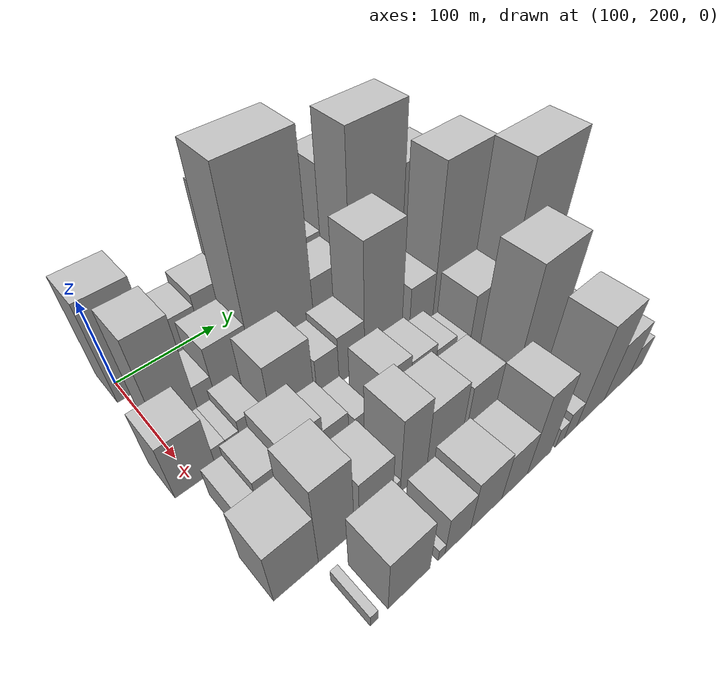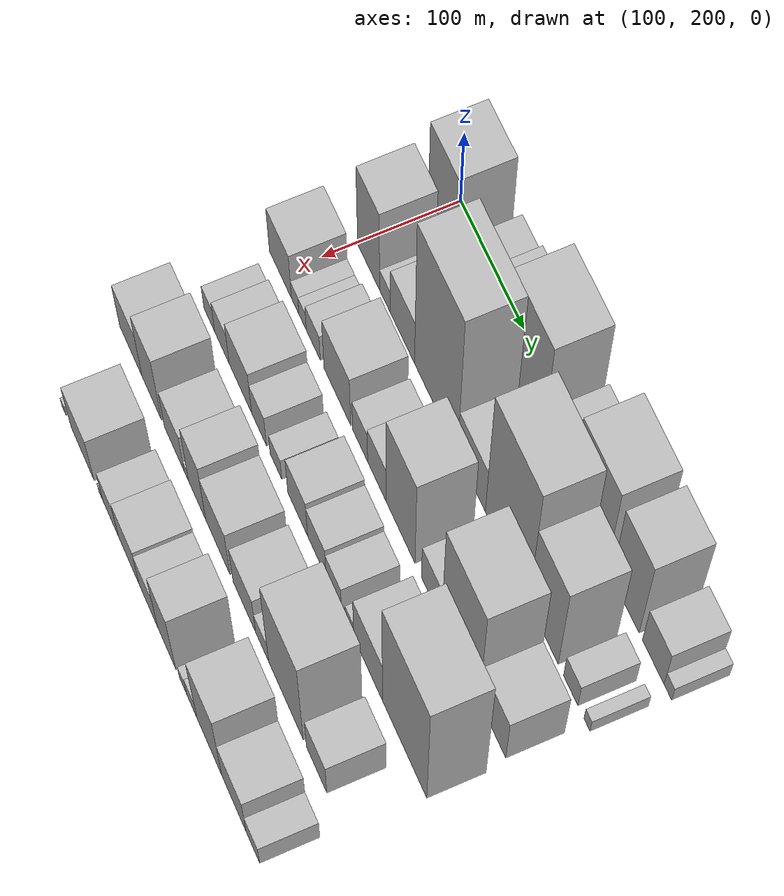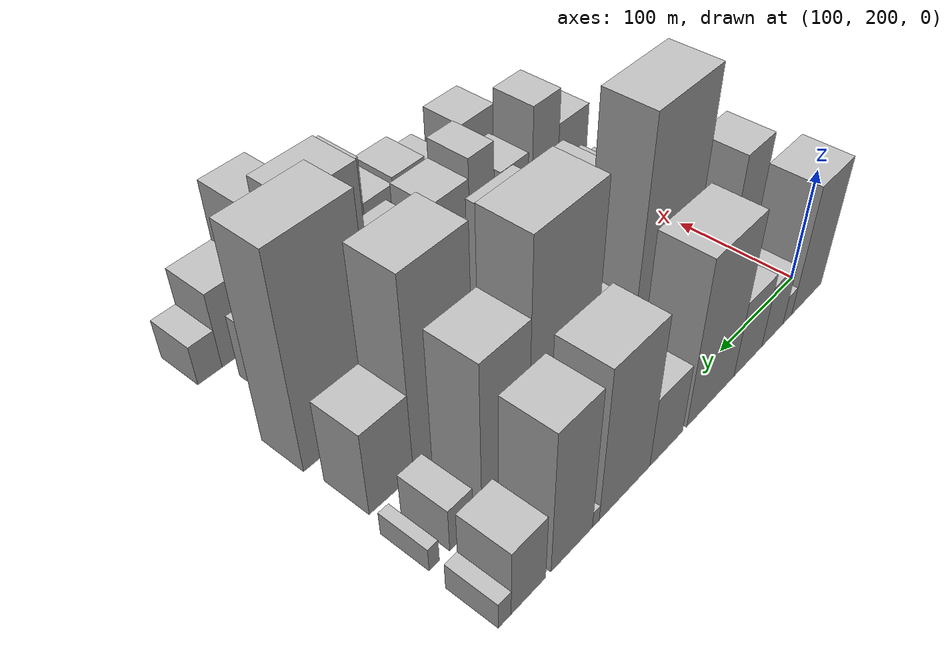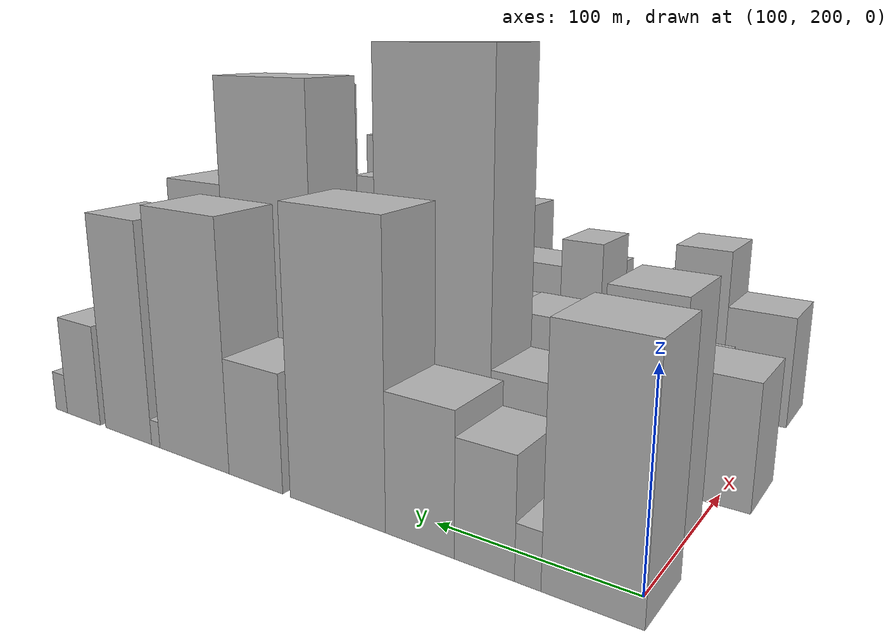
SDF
<sdf version="1.6">
 <world name="default">
  <model name="building_33">
   <static>1</static>
   <pose>100.0000 213.9321 0 0.000000 0.000000 0.000000</pose>
   <link name="link">
    <pose>0 0 58.50 0 0 0</pose>
    <collision name="collision"><geometry><box><size>40.0000 44.3101 117.0000</size></box></geometry></collision>
    <visual name="visual">
     <cast_shadows>0</cast_shadows>
     <geometry><box><size>40.0000 44.3101 117.0000</size></box></geometry>
     <material>
      <script>
       <uri>model://HANNAS_wall/materials/scripts</uri>
       <uri>model://HANNAS_wall/materials/textures</uri>
       <name>vrc/HANNAS_wall</name>
      </script>
     </material>
    </visual>
   </link>
  </model>
  <model name="building_34">
   <static>1</static>
   <pose>100.0000 242.2070 0 0.000000 0.000000 0.000000</pose>
   <link name="link">
    <pose>0 0 13.50 0 0 0</pose>
    <collision name="collision"><geometry><box><size>40.0000 12.2397 27.0000</size></box></geometry></collision>
    <visual name="visual">
     <cast_shadows>0</cast_shadows>
     <geometry><box><size>40.0000 12.2397 27.0000</size></box></geometry>
     <material>
      <script>
       <uri>model://HANNAS_wall/materials/scripts</uri>
       <uri>model://HANNAS_wall/materials/textures</uri>
       <name>vrc/HANNAS_wall</name>
      </script>
     </material>
    </visual>
   </link>
  </model>
  <model name="building_35">
   <static>1</static>
   <pose>100.0000 263.1546 0 0.000000 0.000000 0.000000</pose>
   <link name="link">
    <pose>0 0 28.50 0 0 0</pose>
    <collision name="collision"><geometry><box><size>40.0000 29.6554 57.0000</size></box></geometry></collision>
    <visual name="visual">
     <cast_shadows>0</cast_shadows>
     <geometry><box><size>40.0000 29.6554 57.0000</size></box></geometry>
     <material>
      <script>
       <uri>model://HANNAS_wall/materials/scripts</uri>
       <uri>model://HANNAS_wall/materials/textures</uri>
       <name>vrc/HANNAS_wall</name>
      </script>
     </material>
    </visual>
   </link>
  </model>
  <model name="building_36">
   <static>1</static>
   <pose>100.0000 296.5059 0 0.000000 0.000000 0.000000</pose>
   <link name="link">
    <pose>0 0 34.50 0 0 0</pose>
    <collision name="collision"><geometry><box><size>40.0000 37.0472 69.0000</size></box></geometry></collision>
    <visual name="visual">
     <cast_shadows>0</cast_shadows>
     <geometry><box><size>40.0000 37.0472 69.0000</size></box></geometry>
     <material>
      <script>
       <uri>model://HANNAS_wall/materials/scripts</uri>
       <uri>model://HANNAS_wall/materials/textures</uri>
       <name>vrc/HANNAS_wall</name>
      </script>
     </material>
    </visual>
   </link>
  </model>
  <model name="building_37">
   <static>1</static>
   <pose>100.0000 344.2354 0 0.000000 0.000000 0.000000</pose>
   <link name="link">
    <pose>0 0 73.50 0 0 0</pose>
    <collision name="collision"><geometry><box><size>40.0000 58.4118 147.0000</size></box></geometry></collision>
    <visual name="visual">
     <cast_shadows>0</cast_shadows>
     <geometry><box><size>40.0000 58.4118 147.0000</size></box></geometry>
     <material>
      <script>
       <uri>model://HANNAS_wall/materials/scripts</uri>
       <uri>model://HANNAS_wall/materials/textures</uri>
       <name>vrc/HANNAS_wall</name>
      </script>
     </material>
    </visual>
   </link>
  </model>
  <model name="building_38">
   <static>1</static>
   <pose>100.0000 397.1928 0 0.000000 0.000000 0.000000</pose>
   <link name="link">
    <pose>0 0 31.50 0 0 0</pose>
    <collision name="collision"><geometry><box><size>40.0000 37.5030 63.0000</size></box></geometry></collision>
    <visual name="visual">
     <cast_shadows>0</cast_shadows>
     <geometry><box><size>40.0000 37.5030 63.0000</size></box></geometry>
     <material>
      <script>
       <uri>model://HANNAS_wall/materials/scripts</uri>
       <uri>model://HANNAS_wall/materials/textures</uri>
       <name>vrc/HANNAS_wall</name>
      </script>
     </material>
    </visual>
   </link>
  </model>
  <model name="building_39">
   <static>1</static>
   <pose>100.0000 442.8847 0 0.000000 0.000000 0.000000</pose>
   <link name="link">
    <pose>0 0 67.50 0 0 0</pose>
    <collision name="collision"><geometry><box><size>40.0000 53.8809 135.0000</size></box></geometry></collision>
    <visual name="visual">
     <cast_shadows>0</cast_shadows>
     <geometry><box><size>40.0000 53.8809 135.0000</size></box></geometry>
     <material>
      <script>
       <uri>model://HANNAS_wall/materials/scripts</uri>
       <uri>model://HANNAS_wall/materials/textures</uri>
       <name>vrc/HANNAS_wall</name>
      </script>
     </material>
    </visual>
   </link>
  </model>
  <model name="building_40">
   <static>1</static>
   <pose>100.0000 473.2763 0 0.000000 0.000000 0.000000</pose>
   <link name="link">
    <pose>0 0 7.50 0 0 0</pose>
    <collision name="collision"><geometry><box><size>40.0000 6.9024 15.0000</size></box></geometry></collision>
    <visual name="visual">
     <cast_shadows>0</cast_shadows>
     <geometry><box><size>40.0000 6.9024 15.0000</size></box></geometry>
     <material>
      <script>
       <uri>model://HANNAS_wall/materials/scripts</uri>
       <uri>model://HANNAS_wall/materials/textures</uri>
       <name>vrc/HANNAS_wall</name>
      </script>
     </material>
    </visual>
   </link>
  </model>
  <model name="building_41">
   <static>1</static>
   <pose>100.0000 496.8491 0 0.000000 0.000000 0.000000</pose>
   <link name="link">
    <pose>0 0 63.00 0 0 0</pose>
    <collision name="collision"><geometry><box><size>40.0000 40.2432 126.0000</size></box></geometry></collision>
    <visual name="visual">
     <cast_shadows>0</cast_shadows>
     <geometry><box><size>40.0000 40.2432 126.0000</size></box></geometry>
     <material>
      <script>
       <uri>model://HANNAS_wall/materials/scripts</uri>
       <uri>model://HANNAS_wall/materials/textures</uri>
       <name>vrc/HANNAS_wall</name>
      </script>
     </material>
    </visual>
   </link>
  </model>
  <model name="building_42">
   <static>1</static>
   <pose>100.0000 537.6740 0 0.000000 0.000000 0.000000</pose>
   <link name="link">
    <pose>0 0 30.00 0 0 0</pose>
    <collision name="collision"><geometry><box><size>40.0000 31.4066 60.0000</size></box></geometry></collision>
    <visual name="visual">
     <cast_shadows>0</cast_shadows>
     <geometry><box><size>40.0000 31.4066 60.0000</size></box></geometry>
     <material>
      <script>
       <uri>model://HANNAS_wall/materials/scripts</uri>
       <uri>model://HANNAS_wall/materials/textures</uri>
       <name>vrc/HANNAS_wall</name>
      </script>
     </material>
    </visual>
   </link>
  </model>
  <model name="building_43">
   <static>1</static>
   <pose>100.0000 558.9490 0 0.000000 0.000000 0.000000</pose>
   <link name="link">
    <pose>0 0 12.00 0 0 0</pose>
    <collision name="collision"><geometry><box><size>40.0000 11.1433 24.0000</size></box></geometry></collision>
    <visual name="visual">
     <cast_shadows>0</cast_shadows>
     <geometry><box><size>40.0000 11.1433 24.0000</size></box></geometry>
     <material>
      <script>
       <uri>model://HANNAS_wall/materials/scripts</uri>
       <uri>model://HANNAS_wall/materials/textures</uri>
       <name>vrc/HANNAS_wall</name>
      </script>
     </material>
    </visual>
   </link>
  </model>
  <model name="building_84">
   <static>1</static>
   <pose>155.0000 219.1390 0 0.000000 0.000000 0.000000</pose>
   <link name="link">
    <pose>0 0 58.50 0 0 0</pose>
    <collision name="collision"><geometry><box><size>40.0000 36.0202 117.0000</size></box></geometry></collision>
    <visual name="visual">
     <cast_shadows>0</cast_shadows>
     <geometry><box><size>40.0000 36.0202 117.0000</size></box></geometry>
     <material>
      <script>
       <uri>model://HANNAS_wall/materials/scripts</uri>
       <uri>model://HANNAS_wall/materials/textures</uri>
       <name>vrc/HANNAS_wall</name>
      </script>
     </material>
    </visual>
   </link>
  </model>
  <model name="building_85">
   <static>1</static>
   <pose>155.0000 245.7394 0 0.000000 0.000000 0.000000</pose>
   <link name="link">
    <pose>0 0 16.50 0 0 0</pose>
    <collision name="collision"><geometry><box><size>40.0000 17.1807 33.0000</size></box></geometry></collision>
    <visual name="visual">
     <cast_shadows>0</cast_shadows>
     <geometry><box><size>40.0000 17.1807 33.0000</size></box></geometry>
     <material>
      <script>
       <uri>model://HANNAS_wall/materials/scripts</uri>
       <uri>model://HANNAS_wall/materials/textures</uri>
       <name>vrc/HANNAS_wall</name>
      </script>
     </material>
    </visual>
   </link>
  </model>
  <model name="building_86">
   <static>1</static>
   <pose>155.0000 273.8346 0 0.000000 0.000000 0.000000</pose>
   <link name="link">
    <pose>0 0 33.00 0 0 0</pose>
    <collision name="collision"><geometry><box><size>40.0000 39.0097 66.0000</size></box></geometry></collision>
    <visual name="visual">
     <cast_shadows>0</cast_shadows>
     <geometry><box><size>40.0000 39.0097 66.0000</size></box></geometry>
     <material>
      <script>
       <uri>model://HANNAS_wall/materials/scripts</uri>
       <uri>model://HANNAS_wall/materials/textures</uri>
       <name>vrc/HANNAS_wall</name>
      </script>
     </material>
    </visual>
   </link>
  </model>
  <model name="building_87">
   <static>1</static>
   <pose>155.0000 327.4245 0 0.000000 0.000000 0.000000</pose>
   <link name="link">
    <pose>0 0 108.00 0 0 0</pose>
    <collision name="collision"><geometry><box><size>40.0000 68.1700 216.0000</size></box></geometry></collision>
    <visual name="visual">
     <cast_shadows>0</cast_shadows>
     <geometry><box><size>40.0000 68.1700 216.0000</size></box></geometry>
     <material>
      <script>
       <uri>model://HANNAS_wall/materials/scripts</uri>
       <uri>model://HANNAS_wall/materials/textures</uri>
       <name>vrc/HANNAS_wall</name>
      </script>
     </material>
    </visual>
   </link>
  </model>
  <model name="building_88">
   <static>1</static>
   <pose>155.0000 383.0594 0 0.000000 0.000000 0.000000</pose>
   <link name="link">
    <pose>0 0 36.00 0 0 0</pose>
    <collision name="collision"><geometry><box><size>40.0000 43.0999 72.0000</size></box></geometry></collision>
    <visual name="visual">
     <cast_shadows>0</cast_shadows>
     <geometry><box><size>40.0000 43.0999 72.0000</size></box></geometry>
     <material>
      <script>
       <uri>model://HANNAS_wall/materials/scripts</uri>
       <uri>model://HANNAS_wall/materials/textures</uri>
       <name>vrc/HANNAS_wall</name>
      </script>
     </material>
    </visual>
   </link>
  </model>
  <model name="building_89">
   <static>1</static>
   <pose>155.0000 437.7868 0 0.000000 0.000000 0.000000</pose>
   <link name="link">
    <pose>0 0 99.00 0 0 0</pose>
    <collision name="collision"><geometry><box><size>40.0000 66.3550 198.0000</size></box></geometry></collision>
    <visual name="visual">
     <cast_shadows>0</cast_shadows>
     <geometry><box><size>40.0000 66.3550 198.0000</size></box></geometry>
     <material>
      <script>
       <uri>model://HANNAS_wall/materials/scripts</uri>
       <uri>model://HANNAS_wall/materials/textures</uri>
       <name>vrc/HANNAS_wall</name>
      </script>
     </material>
    </visual>
   </link>
  </model>
  <model name="building_90">
   <static>1</static>
   <pose>155.0000 493.0287 0 0.000000 0.000000 0.000000</pose>
   <link name="link">
    <pose>0 0 69.00 0 0 0</pose>
    <collision name="collision"><geometry><box><size>40.0000 44.1287 138.0000</size></box></geometry></collision>
    <visual name="visual">
     <cast_shadows>0</cast_shadows>
     <geometry><box><size>40.0000 44.1287 138.0000</size></box></geometry>
     <material>
      <script>
       <uri>model://HANNAS_wall/materials/scripts</uri>
       <uri>model://HANNAS_wall/materials/textures</uri>
       <name>vrc/HANNAS_wall</name>
      </script>
     </material>
    </visual>
   </link>
  </model>
  <model name="building_91">
   <static>1</static>
   <pose>155.0000 533.7193 0 0.000000 0.000000 0.000000</pose>
   <link name="link">
    <pose>0 0 19.50 0 0 0</pose>
    <collision name="collision"><geometry><box><size>40.0000 21.2525 39.0000</size></box></geometry></collision>
    <visual name="visual">
     <cast_shadows>0</cast_shadows>
     <geometry><box><size>40.0000 21.2525 39.0000</size></box></geometry>
     <material>
      <script>
       <uri>model://HANNAS_wall/materials/scripts</uri>
       <uri>model://HANNAS_wall/materials/textures</uri>
       <name>vrc/HANNAS_wall</name>
      </script>
     </material>
    </visual>
   </link>
  </model>
  <model name="building_92">
   <static>1</static>
   <pose>155.0000 557.8090 0 0.000000 0.000000 0.000000</pose>
   <link name="link">
    <pose>0 0 10.50 0 0 0</pose>
    <collision name="collision"><geometry><box><size>40.0000 8.9268 21.0000</size></box></geometry></collision>
    <visual name="visual">
     <cast_shadows>0</cast_shadows>
     <geometry><box><size>40.0000 8.9268 21.0000</size></box></geometry>
     <material>
      <script>
       <uri>model://HANNAS_wall/materials/scripts</uri>
       <uri>model://HANNAS_wall/materials/textures</uri>
       <name>vrc/HANNAS_wall</name>
      </script>
     </material>
    </visual>
   </link>
  </model>
  <model name="building_135">
   <static>1</static>
   <pose>210.0000 200.7250 0 0.000000 0.000000 0.000000</pose>
   <link name="link">
    <pose>0 0 33.00 0 0 0</pose>
    <collision name="collision"><geometry><box><size>40.0000 36.5494 66.0000</size></box></geometry></collision>
    <visual name="visual">
     <cast_shadows>0</cast_shadows>
     <geometry><box><size>40.0000 36.5494 66.0000</size></box></geometry>
     <material>
      <script>
       <uri>model://HANNAS_wall/materials/scripts</uri>
       <uri>model://HANNAS_wall/materials/textures</uri>
       <name>vrc/HANNAS_wall</name>
      </script>
     </material>
    </visual>
   </link>
  </model>
  <model name="building_136">
   <static>1</static>
   <pose>210.0000 225.2711 0 0.000000 0.000000 0.000000</pose>
   <link name="link">
    <pose>0 0 13.50 0 0 0</pose>
    <collision name="collision"><geometry><box><size>40.0000 12.5429 27.0000</size></box></geometry></collision>
    <visual name="visual">
     <cast_shadows>0</cast_shadows>
     <geometry><box><size>40.0000 12.5429 27.0000</size></box></geometry>
     <material>
      <script>
       <uri>model://HANNAS_wall/materials/scripts</uri>
       <uri>model://HANNAS_wall/materials/textures</uri>
       <name>vrc/HANNAS_wall</name>
      </script>
     </material>
    </visual>
   </link>
  </model>
  <model name="building_137">
   <static>1</static>
   <pose>210.0000 237.6743 0 0.000000 0.000000 0.000000</pose>
   <link name="link">
    <pose>0 0 13.50 0 0 0</pose>
    <collision name="collision"><geometry><box><size>40.0000 12.2636 27.0000</size></box></geometry></collision>
    <visual name="visual">
     <cast_shadows>0</cast_shadows>
     <geometry><box><size>40.0000 12.2636 27.0000</size></box></geometry>
     <material>
      <script>
       <uri>model://HANNAS_wall/materials/scripts</uri>
       <uri>model://HANNAS_wall/materials/textures</uri>
       <name>vrc/HANNAS_wall</name>
      </script>
     </material>
    </visual>
   </link>
  </model>
  <model name="building_138">
   <static>1</static>
   <pose>210.0000 255.3234 0 0.000000 0.000000 0.000000</pose>
   <link name="link">
    <pose>0 0 19.50 0 0 0</pose>
    <collision name="collision"><geometry><box><size>40.0000 23.0345 39.0000</size></box></geometry></collision>
    <visual name="visual">
     <cast_shadows>0</cast_shadows>
     <geometry><box><size>40.0000 23.0345 39.0000</size></box></geometry>
     <material>
      <script>
       <uri>model://HANNAS_wall/materials/scripts</uri>
       <uri>model://HANNAS_wall/materials/textures</uri>
       <name>vrc/HANNAS_wall</name>
      </script>
     </material>
    </visual>
   </link>
  </model>
  <model name="building_139">
   <static>1</static>
   <pose>210.0000 294.5655 0 0.000000 0.000000 0.000000</pose>
   <link name="link">
    <pose>0 0 39.00 0 0 0</pose>
    <collision name="collision"><geometry><box><size>40.0000 43.4496 78.0000</size></box></geometry></collision>
    <visual name="visual">
     <cast_shadows>0</cast_shadows>
     <geometry><box><size>40.0000 43.4496 78.0000</size></box></geometry>
     <material>
      <script>
       <uri>model://HANNAS_wall/materials/scripts</uri>
       <uri>model://HANNAS_wall/materials/textures</uri>
       <name>vrc/HANNAS_wall</name>
      </script>
     </material>
    </visual>
   </link>
  </model>
  <model name="building_140">
   <static>1</static>
   <pose>210.0000 331.3820 0 0.000000 0.000000 0.000000</pose>
   <link name="link">
    <pose>0 0 24.00 0 0 0</pose>
    <collision name="collision"><geometry><box><size>40.0000 24.1835 48.0000</size></box></geometry></collision>
    <visual name="visual">
     <cast_shadows>0</cast_shadows>
     <geometry><box><size>40.0000 24.1835 48.0000</size></box></geometry>
     <material>
      <script>
       <uri>model://HANNAS_wall/materials/scripts</uri>
       <uri>model://HANNAS_wall/materials/textures</uri>
       <name>vrc/HANNAS_wall</name>
      </script>
     </material>
    </visual>
   </link>
  </model>
  <model name="building_141">
   <static>1</static>
   <pose>210.0000 358.2164 0 0.000000 0.000000 0.000000</pose>
   <link name="link">
    <pose>0 0 28.50 0 0 0</pose>
    <collision name="collision"><geometry><box><size>40.0000 29.4853 57.0000</size></box></geometry></collision>
    <visual name="visual">
     <cast_shadows>0</cast_shadows>
     <geometry><box><size>40.0000 29.4853 57.0000</size></box></geometry>
     <material>
      <script>
       <uri>model://HANNAS_wall/materials/scripts</uri>
       <uri>model://HANNAS_wall/materials/textures</uri>
       <name>vrc/HANNAS_wall</name>
      </script>
     </material>
    </visual>
   </link>
  </model>
  <model name="building_142">
   <static>1</static>
   <pose>210.0000 395.6234 0 0.000000 0.000000 0.000000</pose>
   <link name="link">
    <pose>0 0 70.50 0 0 0</pose>
    <collision name="collision"><geometry><box><size>40.0000 45.3287 141.0000</size></box></geometry></collision>
    <visual name="visual">
     <cast_shadows>0</cast_shadows>
     <geometry><box><size>40.0000 45.3287 141.0000</size></box></geometry>
     <material>
      <script>
       <uri>model://HANNAS_wall/materials/scripts</uri>
       <uri>model://HANNAS_wall/materials/textures</uri>
       <name>vrc/HANNAS_wall</name>
      </script>
     </material>
    </visual>
   </link>
  </model>
  <model name="building_143">
   <static>1</static>
   <pose>210.0000 444.0224 0 0.000000 0.000000 0.000000</pose>
   <link name="link">
    <pose>0 0 28.50 0 0 0</pose>
    <collision name="collision"><geometry><box><size>40.0000 31.4693 57.0000</size></box></geometry></collision>
    <visual name="visual">
     <cast_shadows>0</cast_shadows>
     <geometry><box><size>40.0000 31.4693 57.0000</size></box></geometry>
     <material>
      <script>
       <uri>model://HANNAS_wall/materials/scripts</uri>
       <uri>model://HANNAS_wall/materials/textures</uri>
       <name>vrc/HANNAS_wall</name>
      </script>
     </material>
    </visual>
   </link>
  </model>
  <model name="building_144">
   <static>1</static>
   <pose>210.0000 488.5923 0 0.000000 0.000000 0.000000</pose>
   <link name="link">
    <pose>0 0 85.50 0 0 0</pose>
    <collision name="collision"><geometry><box><size>40.0000 57.6704 171.0000</size></box></geometry></collision>
    <visual name="visual">
     <cast_shadows>0</cast_shadows>
     <geometry><box><size>40.0000 57.6704 171.0000</size></box></geometry>
     <material>
      <script>
       <uri>model://HANNAS_wall/materials/scripts</uri>
       <uri>model://HANNAS_wall/materials/textures</uri>
       <name>vrc/HANNAS_wall</name>
      </script>
     </material>
    </visual>
   </link>
  </model>
  <model name="building_145">
   <static>1</static>
   <pose>210.0000 537.1271 0 0.000000 0.000000 0.000000</pose>
   <link name="link">
    <pose>0 0 37.50 0 0 0</pose>
    <collision name="collision"><geometry><box><size>40.0000 39.3991 75.0000</size></box></geometry></collision>
    <visual name="visual">
     <cast_shadows>0</cast_shadows>
     <geometry><box><size>40.0000 39.3991 75.0000</size></box></geometry>
     <material>
      <script>
       <uri>model://HANNAS_wall/materials/scripts</uri>
       <uri>model://HANNAS_wall/materials/textures</uri>
       <name>vrc/HANNAS_wall</name>
      </script>
     </material>
    </visual>
   </link>
  </model>
  <model name="building_189">
   <static>1</static>
   <pose>265.0000 211.9181 0 0.000000 0.000000 0.000000</pose>
   <link name="link">
    <pose>0 0 18.00 0 0 0</pose>
    <collision name="collision"><geometry><box><size>40.0000 18.1198 36.0000</size></box></geometry></collision>
    <visual name="visual">
     <cast_shadows>0</cast_shadows>
     <geometry><box><size>40.0000 18.1198 36.0000</size></box></geometry>
     <material>
      <script>
       <uri>model://HANNAS_wall/materials/scripts</uri>
       <uri>model://HANNAS_wall/materials/textures</uri>
       <name>vrc/HANNAS_wall</name>
      </script>
     </material>
    </visual>
   </link>
  </model>
  <model name="building_190">
   <static>1</static>
   <pose>265.0000 233.2220 0 0.000000 0.000000 0.000000</pose>
   <link name="link">
    <pose>0 0 24.00 0 0 0</pose>
    <collision name="collision"><geometry><box><size>40.0000 24.4879 48.0000</size></box></geometry></collision>
    <visual name="visual">
     <cast_shadows>0</cast_shadows>
     <geometry><box><size>40.0000 24.4879 48.0000</size></box></geometry>
     <material>
      <script>
       <uri>model://HANNAS_wall/materials/scripts</uri>
       <uri>model://HANNAS_wall/materials/textures</uri>
       <name>vrc/HANNAS_wall</name>
      </script>
     </material>
    </visual>
   </link>
  </model>
  <model name="building_191">
   <static>1</static>
   <pose>265.0000 264.1701 0 0.000000 0.000000 0.000000</pose>
   <link name="link">
    <pose>0 0 33.00 0 0 0</pose>
    <collision name="collision"><geometry><box><size>40.0000 37.4084 66.0000</size></box></geometry></collision>
    <visual name="visual">
     <cast_shadows>0</cast_shadows>
     <geometry><box><size>40.0000 37.4084 66.0000</size></box></geometry>
     <material>
      <script>
       <uri>model://HANNAS_wall/materials/scripts</uri>
       <uri>model://HANNAS_wall/materials/textures</uri>
       <name>vrc/HANNAS_wall</name>
      </script>
     </material>
    </visual>
   </link>
  </model>
  <model name="building_192">
   <static>1</static>
   <pose>265.0000 295.1144 0 0.000000 0.000000 0.000000</pose>
   <link name="link">
    <pose>0 0 24.00 0 0 0</pose>
    <collision name="collision"><geometry><box><size>40.0000 24.4801 48.0000</size></box></geometry></collision>
    <visual name="visual">
     <cast_shadows>0</cast_shadows>
     <geometry><box><size>40.0000 24.4801 48.0000</size></box></geometry>
     <material>
      <script>
       <uri>model://HANNAS_wall/materials/scripts</uri>
       <uri>model://HANNAS_wall/materials/textures</uri>
       <name>vrc/HANNAS_wall</name>
      </script>
     </material>
    </visual>
   </link>
  </model>
  <model name="building_193">
   <static>1</static>
   <pose>265.0000 322.8152 0 0.000000 0.000000 0.000000</pose>
   <link name="link">
    <pose>0 0 16.50 0 0 0</pose>
    <collision name="collision"><geometry><box><size>40.0000 18.9216 33.0000</size></box></geometry></collision>
    <visual name="visual">
     <cast_shadows>0</cast_shadows>
     <geometry><box><size>40.0000 18.9216 33.0000</size></box></geometry>
     <material>
      <script>
       <uri>model://HANNAS_wall/materials/scripts</uri>
       <uri>model://HANNAS_wall/materials/textures</uri>
       <name>vrc/HANNAS_wall</name>
      </script>
     </material>
    </visual>
   </link>
  </model>
  <model name="building_194">
   <static>1</static>
   <pose>265.0000 358.2203 0 0.000000 0.000000 0.000000</pose>
   <link name="link">
    <pose>0 0 30.00 0 0 0</pose>
    <collision name="collision"><geometry><box><size>40.0000 31.8886 60.0000</size></box></geometry></collision>
    <visual name="visual">
     <cast_shadows>0</cast_shadows>
     <geometry><box><size>40.0000 31.8886 60.0000</size></box></geometry>
     <material>
      <script>
       <uri>model://HANNAS_wall/materials/scripts</uri>
       <uri>model://HANNAS_wall/materials/textures</uri>
       <name>vrc/HANNAS_wall</name>
      </script>
     </material>
    </visual>
   </link>
  </model>
  <model name="building_195">
   <static>1</static>
   <pose>265.0000 389.0641 0 0.000000 0.000000 0.000000</pose>
   <link name="link">
    <pose>0 0 25.50 0 0 0</pose>
    <collision name="collision"><geometry><box><size>40.0000 29.7991 51.0000</size></box></geometry></collision>
    <visual name="visual">
     <cast_shadows>0</cast_shadows>
     <geometry><box><size>40.0000 29.7991 51.0000</size></box></geometry>
     <material>
      <script>
       <uri>model://HANNAS_wall/materials/scripts</uri>
       <uri>model://HANNAS_wall/materials/textures</uri>
       <name>vrc/HANNAS_wall</name>
      </script>
     </material>
    </visual>
   </link>
  </model>
  <model name="building_196">
   <static>1</static>
   <pose>265.0000 416.2085 0 0.000000 0.000000 0.000000</pose>
   <link name="link">
    <pose>0 0 21.00 0 0 0</pose>
    <collision name="collision"><geometry><box><size>40.0000 24.4897 42.0000</size></box></geometry></collision>
    <visual name="visual">
     <cast_shadows>0</cast_shadows>
     <geometry><box><size>40.0000 24.4897 42.0000</size></box></geometry>
     <material>
      <script>
       <uri>model://HANNAS_wall/materials/scripts</uri>
       <uri>model://HANNAS_wall/materials/textures</uri>
       <name>vrc/HANNAS_wall</name>
      </script>
     </material>
    </visual>
   </link>
  </model>
  <model name="building_197">
   <static>1</static>
   <pose>265.0000 441.1513 0 0.000000 0.000000 0.000000</pose>
   <link name="link">
    <pose>0 0 13.50 0 0 0</pose>
    <collision name="collision"><geometry><box><size>40.0000 13.3959 27.0000</size></box></geometry></collision>
    <visual name="visual">
     <cast_shadows>0</cast_shadows>
     <geometry><box><size>40.0000 13.3959 27.0000</size></box></geometry>
     <material>
      <script>
       <uri>model://HANNAS_wall/materials/scripts</uri>
       <uri>model://HANNAS_wall/materials/textures</uri>
       <name>vrc/HANNAS_wall</name>
      </script>
     </material>
    </visual>
   </link>
  </model>
  <model name="building_198">
   <static>1</static>
   <pose>265.0000 470.2243 0 0.000000 0.000000 0.000000</pose>
   <link name="link">
    <pose>0 0 37.50 0 0 0</pose>
    <collision name="collision"><geometry><box><size>40.0000 44.7502 75.0000</size></box></geometry></collision>
    <visual name="visual">
     <cast_shadows>0</cast_shadows>
     <geometry><box><size>40.0000 44.7502 75.0000</size></box></geometry>
     <material>
      <script>
       <uri>model://HANNAS_wall/materials/scripts</uri>
       <uri>model://HANNAS_wall/materials/textures</uri>
       <name>vrc/HANNAS_wall</name>
      </script>
     </material>
    </visual>
   </link>
  </model>
  <model name="building_199">
   <static>1</static>
   <pose>265.0000 526.4857 0 0.000000 0.000000 0.000000</pose>
   <link name="link">
    <pose>0 0 93.00 0 0 0</pose>
    <collision name="collision"><geometry><box><size>40.0000 67.7726 186.0000</size></box></geometry></collision>
    <visual name="visual">
     <cast_shadows>0</cast_shadows>
     <geometry><box><size>40.0000 67.7726 186.0000</size></box></geometry>
     <material>
      <script>
       <uri>model://HANNAS_wall/materials/scripts</uri>
       <uri>model://HANNAS_wall/materials/textures</uri>
       <name>vrc/HANNAS_wall</name>
      </script>
     </material>
    </visual>
   </link>
  </model>
  <model name="building_243">
   <static>1</static>
   <pose>320.0000 211.6573 0 0.000000 0.000000 0.000000</pose>
   <link name="link">
    <pose>0 0 33.00 0 0 0</pose>
    <collision name="collision"><geometry><box><size>40.0000 38.4116 66.0000</size></box></geometry></collision>
    <visual name="visual">
     <cast_shadows>0</cast_shadows>
     <geometry><box><size>40.0000 38.4116 66.0000</size></box></geometry>
     <material>
      <script>
       <uri>model://HANNAS_wall/materials/scripts</uri>
       <uri>model://HANNAS_wall/materials/textures</uri>
       <name>vrc/HANNAS_wall</name>
      </script>
     </material>
    </visual>
   </link>
  </model>
  <model name="building_244">
   <static>1</static>
   <pose>320.0000 247.4299 0 0.000000 0.000000 0.000000</pose>
   <link name="link">
    <pose>0 0 49.50 0 0 0</pose>
    <collision name="collision"><geometry><box><size>40.0000 33.1337 99.0000</size></box></geometry></collision>
    <visual name="visual">
     <cast_shadows>0</cast_shadows>
     <geometry><box><size>40.0000 33.1337 99.0000</size></box></geometry>
     <material>
      <script>
       <uri>model://HANNAS_wall/materials/scripts</uri>
       <uri>model://HANNAS_wall/materials/textures</uri>
       <name>vrc/HANNAS_wall</name>
      </script>
     </material>
    </visual>
   </link>
  </model>
  <model name="building_245">
   <static>1</static>
   <pose>320.0000 285.6600 0 0.000000 0.000000 0.000000</pose>
   <link name="link">
    <pose>0 0 30.00 0 0 0</pose>
    <collision name="collision"><geometry><box><size>40.0000 33.3264 60.0000</size></box></geometry></collision>
    <visual name="visual">
     <cast_shadows>0</cast_shadows>
     <geometry><box><size>40.0000 33.3264 60.0000</size></box></geometry>
     <material>
      <script>
       <uri>model://HANNAS_wall/materials/scripts</uri>
       <uri>model://HANNAS_wall/materials/textures</uri>
       <name>vrc/HANNAS_wall</name>
      </script>
     </material>
    </visual>
   </link>
  </model>
  <model name="building_246">
   <static>1</static>
   <pose>320.0000 306.1098 0 0.000000 0.000000 0.000000</pose>
   <link name="link">
    <pose>0 0 9.00 0 0 0</pose>
    <collision name="collision"><geometry><box><size>40.0000 7.5732 18.0000</size></box></geometry></collision>
    <visual name="visual">
     <cast_shadows>0</cast_shadows>
     <geometry><box><size>40.0000 7.5732 18.0000</size></box></geometry>
     <material>
      <script>
       <uri>model://HANNAS_wall/materials/scripts</uri>
       <uri>model://HANNAS_wall/materials/textures</uri>
       <name>vrc/HANNAS_wall</name>
      </script>
     </material>
    </visual>
   </link>
  </model>
  <model name="building_247">
   <static>1</static>
   <pose>320.0000 324.0553 0 0.000000 0.000000 0.000000</pose>
   <link name="link">
    <pose>0 0 46.50 0 0 0</pose>
    <collision name="collision"><geometry><box><size>40.0000 28.3177 93.0000</size></box></geometry></collision>
    <visual name="visual">
     <cast_shadows>0</cast_shadows>
     <geometry><box><size>40.0000 28.3177 93.0000</size></box></geometry>
     <material>
      <script>
       <uri>model://HANNAS_wall/materials/scripts</uri>
       <uri>model://HANNAS_wall/materials/textures</uri>
       <name>vrc/HANNAS_wall</name>
      </script>
     </material>
    </visual>
   </link>
  </model>
  <model name="building_248">
   <static>1</static>
   <pose>320.0000 358.1964 0 0.000000 0.000000 0.000000</pose>
   <link name="link">
    <pose>0 0 37.50 0 0 0</pose>
    <collision name="collision"><geometry><box><size>40.0000 39.9647 75.0000</size></box></geometry></collision>
    <visual name="visual">
     <cast_shadows>0</cast_shadows>
     <geometry><box><size>40.0000 39.9647 75.0000</size></box></geometry>
     <material>
      <script>
       <uri>model://HANNAS_wall/materials/scripts</uri>
       <uri>model://HANNAS_wall/materials/textures</uri>
       <name>vrc/HANNAS_wall</name>
      </script>
     </material>
    </visual>
   </link>
  </model>
  <model name="building_249">
   <static>1</static>
   <pose>320.0000 401.5087 0 0.000000 0.000000 0.000000</pose>
   <link name="link">
    <pose>0 0 31.50 0 0 0</pose>
    <collision name="collision"><geometry><box><size>40.0000 36.6599 63.0000</size></box></geometry></collision>
    <visual name="visual">
     <cast_shadows>0</cast_shadows>
     <geometry><box><size>40.0000 36.6599 63.0000</size></box></geometry>
     <material>
      <script>
       <uri>model://HANNAS_wall/materials/scripts</uri>
       <uri>model://HANNAS_wall/materials/textures</uri>
       <name>vrc/HANNAS_wall</name>
      </script>
     </material>
    </visual>
   </link>
  </model>
  <model name="building_250">
   <static>1</static>
   <pose>320.0000 430.3987 0 0.000000 0.000000 0.000000</pose>
   <link name="link">
    <pose>0 0 18.00 0 0 0</pose>
    <collision name="collision"><geometry><box><size>40.0000 21.1200 36.0000</size></box></geometry></collision>
    <visual name="visual">
     <cast_shadows>0</cast_shadows>
     <geometry><box><size>40.0000 21.1200 36.0000</size></box></geometry>
     <material>
      <script>
       <uri>model://HANNAS_wall/materials/scripts</uri>
       <uri>model://HANNAS_wall/materials/textures</uri>
       <name>vrc/HANNAS_wall</name>
      </script>
     </material>
    </visual>
   </link>
  </model>
  <model name="building_251">
   <static>1</static>
   <pose>320.0000 468.3554 0 0.000000 0.000000 0.000000</pose>
   <link name="link">
    <pose>0 0 75.00 0 0 0</pose>
    <collision name="collision"><geometry><box><size>40.0000 54.7935 150.0000</size></box></geometry></collision>
    <visual name="visual">
     <cast_shadows>0</cast_shadows>
     <geometry><box><size>40.0000 54.7935 150.0000</size></box></geometry>
     <material>
      <script>
       <uri>model://HANNAS_wall/materials/scripts</uri>
       <uri>model://HANNAS_wall/materials/textures</uri>
       <name>vrc/HANNAS_wall</name>
      </script>
     </material>
    </visual>
   </link>
  </model>
  <model name="building_252">
   <static>1</static>
   <pose>320.0000 516.6987 0 0.000000 0.000000 0.000000</pose>
   <link name="link">
    <pose>0 0 28.50 0 0 0</pose>
    <collision name="collision"><geometry><box><size>40.0000 31.8930 57.0000</size></box></geometry></collision>
    <visual name="visual">
     <cast_shadows>0</cast_shadows>
     <geometry><box><size>40.0000 31.8930 57.0000</size></box></geometry>
     <material>
      <script>
       <uri>model://HANNAS_wall/materials/scripts</uri>
       <uri>model://HANNAS_wall/materials/textures</uri>
       <name>vrc/HANNAS_wall</name>
      </script>
     </material>
    </visual>
   </link>
  </model>
  <model name="building_297">
   <static>1</static>
   <pose>375.0000 232.8390 0 0.000000 0.000000 0.000000</pose>
   <link name="link">
    <pose>0 0 7.50 0 0 0</pose>
    <collision name="collision"><geometry><box><size>40.0000 6.8075 15.0000</size></box></geometry></collision>
    <visual name="visual">
     <cast_shadows>0</cast_shadows>
     <geometry><box><size>40.0000 6.8075 15.0000</size></box></geometry>
     <material>
      <script>
       <uri>model://HANNAS_wall/materials/scripts</uri>
       <uri>model://HANNAS_wall/materials/textures</uri>
       <name>vrc/HANNAS_wall</name>
      </script>
     </material>
    </visual>
   </link>
  </model>
  <model name="building_298">
   <static>1</static>
   <pose>375.0000 265.1119 0 0.000000 0.000000 0.000000</pose>
   <link name="link">
    <pose>0 0 34.50 0 0 0</pose>
    <collision name="collision"><geometry><box><size>40.0000 39.7381 69.0000</size></box></geometry></collision>
    <visual name="visual">
     <cast_shadows>0</cast_shadows>
     <geometry><box><size>40.0000 39.7381 69.0000</size></box></geometry>
     <material>
      <script>
       <uri>model://HANNAS_wall/materials/scripts</uri>
       <uri>model://HANNAS_wall/materials/textures</uri>
       <name>vrc/HANNAS_wall</name>
      </script>
     </material>
    </visual>
   </link>
  </model>
  <model name="building_299">
   <static>1</static>
   <pose>375.0000 296.4820 0 0.000000 0.000000 0.000000</pose>
   <link name="link">
    <pose>0 0 7.50 0 0 0</pose>
    <collision name="collision"><geometry><box><size>40.0000 7.0022 15.0000</size></box></geometry></collision>
    <visual name="visual">
     <cast_shadows>0</cast_shadows>
     <geometry><box><size>40.0000 7.0022 15.0000</size></box></geometry>
     <material>
      <script>
       <uri>model://HANNAS_wall/materials/scripts</uri>
       <uri>model://HANNAS_wall/materials/textures</uri>
       <name>vrc/HANNAS_wall</name>
      </script>
     </material>
    </visual>
   </link>
  </model>
  <model name="building_300">
   <static>1</static>
   <pose>375.0000 313.4128 0 0.000000 0.000000 0.000000</pose>
   <link name="link">
    <pose>0 0 25.50 0 0 0</pose>
    <collision name="collision"><geometry><box><size>40.0000 26.8595 51.0000</size></box></geometry></collision>
    <visual name="visual">
     <cast_shadows>0</cast_shadows>
     <geometry><box><size>40.0000 26.8595 51.0000</size></box></geometry>
     <material>
      <script>
       <uri>model://HANNAS_wall/materials/scripts</uri>
       <uri>model://HANNAS_wall/materials/textures</uri>
       <name>vrc/HANNAS_wall</name>
      </script>
     </material>
    </visual>
   </link>
  </model>
  <model name="building_301">
   <static>1</static>
   <pose>375.0000 344.3544 0 0.000000 0.000000 0.000000</pose>
   <link name="link">
    <pose>0 0 31.50 0 0 0</pose>
    <collision name="collision"><geometry><box><size>40.0000 35.0236 63.0000</size></box></geometry></collision>
    <visual name="visual">
     <cast_shadows>0</cast_shadows>
     <geometry><box><size>40.0000 35.0236 63.0000</size></box></geometry>
     <material>
      <script>
       <uri>model://HANNAS_wall/materials/scripts</uri>
       <uri>model://HANNAS_wall/materials/textures</uri>
       <name>vrc/HANNAS_wall</name>
      </script>
     </material>
    </visual>
   </link>
  </model>
  <model name="building_302">
   <static>1</static>
   <pose>375.0000 377.1401 0 0.000000 0.000000 0.000000</pose>
   <link name="link">
    <pose>0 0 28.50 0 0 0</pose>
    <collision name="collision"><geometry><box><size>40.0000 30.5479 57.0000</size></box></geometry></collision>
    <visual name="visual">
     <cast_shadows>0</cast_shadows>
     <geometry><box><size>40.0000 30.5479 57.0000</size></box></geometry>
     <material>
      <script>
       <uri>model://HANNAS_wall/materials/scripts</uri>
       <uri>model://HANNAS_wall/materials/textures</uri>
       <name>vrc/HANNAS_wall</name>
      </script>
     </material>
    </visual>
   </link>
  </model>
  <model name="building_303">
   <static>1</static>
   <pose>375.0000 407.3012 0 0.000000 0.000000 0.000000</pose>
   <link name="link">
    <pose>0 0 49.50 0 0 0</pose>
    <collision name="collision"><geometry><box><size>40.0000 29.7742 99.0000</size></box></geometry></collision>
    <visual name="visual">
     <cast_shadows>0</cast_shadows>
     <geometry><box><size>40.0000 29.7742 99.0000</size></box></geometry>
     <material>
      <script>
       <uri>model://HANNAS_wall/materials/scripts</uri>
       <uri>model://HANNAS_wall/materials/textures</uri>
       <name>vrc/HANNAS_wall</name>
      </script>
     </material>
    </visual>
   </link>
  </model>
  <model name="building_304">
   <static>1</static>
   <pose>375.0000 433.9977 0 0.000000 0.000000 0.000000</pose>
   <link name="link">
    <pose>0 0 12.00 0 0 0</pose>
    <collision name="collision"><geometry><box><size>40.0000 11.6188 24.0000</size></box></geometry></collision>
    <visual name="visual">
     <cast_shadows>0</cast_shadows>
     <geometry><box><size>40.0000 11.6188 24.0000</size></box></geometry>
     <material>
      <script>
       <uri>model://HANNAS_wall/materials/scripts</uri>
       <uri>model://HANNAS_wall/materials/textures</uri>
       <name>vrc/HANNAS_wall</name>
      </script>
     </material>
    </visual>
   </link>
  </model>
  <model name="building_305">
   <static>1</static>
   <pose>375.0000 448.2681 0 0.000000 0.000000 0.000000</pose>
   <link name="link">
    <pose>0 0 16.50 0 0 0</pose>
    <collision name="collision"><geometry><box><size>40.0000 16.9220 33.0000</size></box></geometry></collision>
    <visual name="visual">
     <cast_shadows>0</cast_shadows>
     <geometry><box><size>40.0000 16.9220 33.0000</size></box></geometry>
     <material>
      <script>
       <uri>model://HANNAS_wall/materials/scripts</uri>
       <uri>model://HANNAS_wall/materials/textures</uri>
       <name>vrc/HANNAS_wall</name>
      </script>
     </material>
    </visual>
   </link>
  </model>
  <model name="building_306">
   <static>1</static>
   <pose>375.0000 476.7190 0 0.000000 0.000000 0.000000</pose>
   <link name="link">
    <pose>0 0 60.00 0 0 0</pose>
    <collision name="collision"><geometry><box><size>40.0000 39.9800 120.0000</size></box></geometry></collision>
    <visual name="visual">
     <cast_shadows>0</cast_shadows>
     <geometry><box><size>40.0000 39.9800 120.0000</size></box></geometry>
     <material>
      <script>
       <uri>model://HANNAS_wall/materials/scripts</uri>
       <uri>model://HANNAS_wall/materials/textures</uri>
       <name>vrc/HANNAS_wall</name>
      </script>
     </material>
    </visual>
   </link>
  </model>
  <model name="building_307">
   <static>1</static>
   <pose>375.0000 516.0853 0 0.000000 0.000000 0.000000</pose>
   <link name="link">
    <pose>0 0 34.50 0 0 0</pose>
    <collision name="collision"><geometry><box><size>40.0000 38.7526 69.0000</size></box></geometry></collision>
    <visual name="visual">
     <cast_shadows>0</cast_shadows>
     <geometry><box><size>40.0000 38.7526 69.0000</size></box></geometry>
     <material>
      <script>
       <uri>model://HANNAS_wall/materials/scripts</uri>
       <uri>model://HANNAS_wall/materials/textures</uri>
       <name>vrc/HANNAS_wall</name>
      </script>
     </material>
    </visual>
   </link>
  </model>
  <model name="building_308">
   <static>1</static>
   <pose>375.0000 545.9965 0 0.000000 0.000000 0.000000</pose>
   <link name="link">
    <pose>0 0 18.00 0 0 0</pose>
    <collision name="collision"><geometry><box><size>40.0000 21.0696 36.0000</size></box></geometry></collision>
    <visual name="visual">
     <cast_shadows>0</cast_shadows>
     <geometry><box><size>40.0000 21.0696 36.0000</size></box></geometry>
     <material>
      <script>
       <uri>model://HANNAS_wall/materials/scripts</uri>
       <uri>model://HANNAS_wall/materials/textures</uri>
       <name>vrc/HANNAS_wall</name>
      </script>
     </material>
    </visual>
   </link>
  </model>
 </world>
</sdf>
